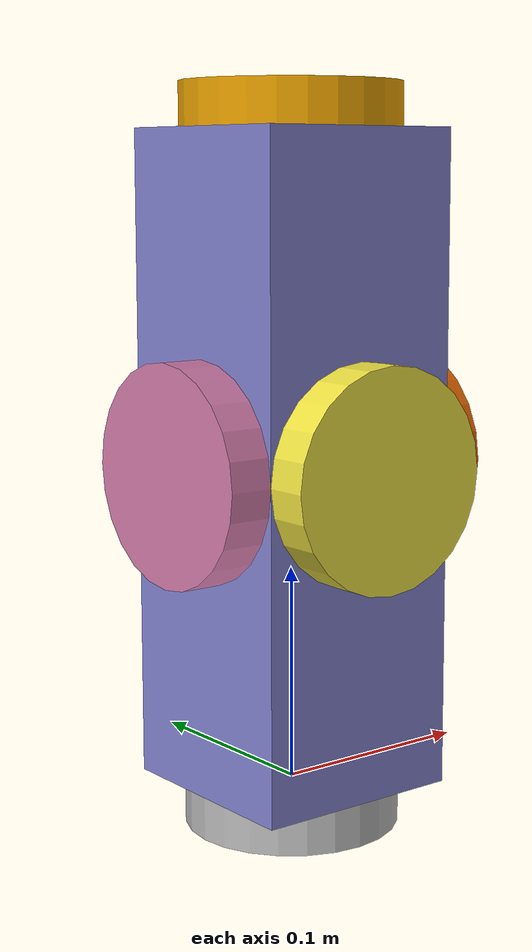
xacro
<?xml version="1.0"?>
<robot xmlns:xacro="http://www.ros.org/wiki/xacro">
    <xacro:include filename="inertial_macros.xacro" />

    <!-- adding the variable -->
    <xacro:property name="wheel_radius" value="0.05" />
    <xacro:property name="wheel_thick" value="0.04" />

    <material name="white">
        <color rgba="1.0 1.0 1.0 1.0" />
    </material>

    <material name="red">
        <color rgba="1.0 0.2 0.2 1.0" />
    </material>
    <material name="black">
        <color rgba="0 0 0 0" />
    </material>
    <material name="light_blue">
        <color rgba="0.5 0.5 0.8 1.0" />
    </material>

    <!-- base link -->
    <link name="base_link"></link>

    <!-- base_footprint link -->
    <joint name="base_footprint_joint" type="fixed">
        <parent link="base_link" />
        <child link="base_footprint" />
        <origin xyz="0.0 0.0 0.0" rpy="0.0 0.0 0.0" />
    </joint>

    <link name="base_footprint"></link>

    <!-- sat_body link -->
    <joint name="sat_body_joint" type="fixed">
        <parent link="base_link" />
        <child link="sat_body" />
        <origin xyz="0.0 0.0 0.15" />
    </joint>

    <link name="sat_body">
        <visual>
            <origin xyz="0.0 0.0 0.0" />

            <geometry>
                <box size="0.1 0.1 0.3 " />
            </geometry>
            <material name="light_blue" />
        </visual>
        <collision>

            <origin xyz="0.0 0.0 0.0" />

            <geometry>
                <box size="0.1 0.1 0.3 " />
            </geometry>

        </collision>
        <xacro:inertial_box mass="0.5" x="0.1" y="0.1" z="0.3">
            <origin xyz="0.0 0.0 0.0" rpy="0 0 0" />
        </xacro:inertial_box>

    </link>
    <gazebo reference='sat_body'>
        <material>Gazebo/Orange </material>
    </gazebo>

    <!-- reaction_wheel_xz link (lettering referes to the plane parallel to them) -->
    <joint name="rec_wheel_xz_joint" type="continuous">
        <parent link="sat_body" />
        <child link="rec_wheel_xz" />
        <origin xyz="0.0 -0.05 0.0" rpy="-${pi/2} 0 0" />
        <axis xyz="0.0 0.0 1.0" />
    </joint>

    <link name="rec_wheel_xz">
        <visual>
            <geometry>
                <cylinder radius="${wheel_radius}" length="0.04" />
                <material name="black" />
            </geometry>
        </visual>
        <collision>

            <geometry>
                <cylinder radius="${wheel_radius}" length="0.04" />
            </geometry>

        </collision>
        <xacro:inertial_cylinder mass="0.1" length="0.04" radius="${wheel_radius}">
            <origin xyz="0.0 0.0 0.0" rpy="0.0 0.0 0.0" />
        </xacro:inertial_cylinder>

    </link>
    <gazebo reference='rec_wheel_xz'>
        <material>Gazebo/Motorway</material>
    </gazebo>
        <!-- reaction_wheel_xz link (lettering referes to the plane parallel to them) -->
    <joint name="rec_wheel_xz_jointbrother" type="continuous">
        <parent link="sat_body" />
        <child link="rec_wheel_xzbrother" />
        <origin xyz="0.0 0.05 0.0" rpy="-${pi/2} 0 0" />
        <axis xyz="0.0 0.0 1.0" />
    </joint>

    <link name="rec_wheel_xzbrother">
        <visual>
            <geometry>
                <cylinder radius="${wheel_radius}" length="0.04" />
                <material name="black" />
            </geometry>
        </visual>
        <collision>

            <geometry>
                <cylinder radius="${wheel_radius}" length="0.04" />
            </geometry>

        </collision>
        <xacro:inertial_cylinder mass="0.1" length="0.04" radius="${wheel_radius}">
            <origin xyz="0.0 0.0 0.0" rpy="0.0 0.0 0.0" />
        </xacro:inertial_cylinder>

    </link>
    <gazebo reference='rec_wheel_xzbrother'>
        <material>Gazebo/Motorway</material>
    </gazebo>

    <!-- reaction wheel in yz plane link -->
    <joint name="rec_wheel_yz_joint" type="continuous">
        <parent link="sat_body" />
        <child link="rec_wheel_yz" />
        <origin xyz="0.05 0.0 0.0" rpy="0 ${pi/2} 0" />
        <axis xyz="0.0 0.0 1.0" />
    </joint>

    <link name="rec_wheel_yz">
        <visual>
            <geometry>
                <cylinder radius="${wheel_radius}" length="0.04" />
                <material name="black" />
            </geometry>
        </visual>
        <collision>

            <geometry>
                <cylinder radius="${wheel_radius}" length="0.04" />
            </geometry>

        </collision>
        <xacro:inertial_cylinder mass="0.1" length="0.04" radius="${wheel_radius}">
            <origin xyz="0.0 0.0 0.0" rpy="0.0 0.0 0.0" />
        </xacro:inertial_cylinder>

    </link>
    <gazebo reference='rec_wheel_yz'>
        <material>Gazebo/Motorway</material>
    </gazebo>

        <!-- reaction wheel in yz plane link -->
    <joint name="rec_wheel_yz_jointbrother" type="continuous">
        <parent link="sat_body" />
        <child link="rec_wheel_yzbrother" />
        <origin xyz="-0.05 0.0 0.0" rpy="0 ${pi/2} 0" />
        <axis xyz="0.0 0.0 1.0" />
    </joint>

    <link name="rec_wheel_yzbrother">
        <visual>
            <geometry>
                <cylinder radius="${wheel_radius}" length="0.04" />
                <material name="black" />
            </geometry>
        </visual>
        <collision>

            <geometry>
                <cylinder radius="${wheel_radius}" length="0.04" />
            </geometry>

        </collision>
        <xacro:inertial_cylinder mass="0.1" length="0.04" radius="${wheel_radius}">
            <origin xyz="0.0 0.0 0.0" rpy="0.0 0.0 0.0" />
        </xacro:inertial_cylinder>

    </link>
    <gazebo reference='rec_wheel_yzbrother'>
        <material>Gazebo/Motorway</material>
    </gazebo>

    <!-- reaction wheel in xy plane link -->
    <joint name="rec_wheel_xy_joint" type="continuous">
        <parent link="sat_body" />
        <child link="rec_wheel_xy" />
        <origin xyz="0.0 0.0 -0.15" rpy="0 ${pi} 0" />
        <axis xyz="0.0 0.0 1.0" />
    </joint>

    <link name="rec_wheel_xy">
        <visual>
            <geometry>
                <cylinder radius="${wheel_radius}" length="0.04" />
                <material name="black" />
            </geometry>
        </visual>
        <collision>

            <geometry>
                <cylinder radius="${wheel_radius}" length="0.04" />
            </geometry>

        </collision>
        <xacro:inertial_cylinder mass="0.1" length="0.04" radius="${wheel_radius}">
            <origin xyz="0.0 0.0 0.0" rpy="0.0 0.0 0.0" />
        </xacro:inertial_cylinder>

    </link>
    <gazebo reference='rec_wheel_xy'>
        <material>Gazebo/Motorway</material>
    </gazebo>

    <!-- reaction wheel in xy plane link  brother -->
    <joint name="rec_wheel_xy_jointbrother" type="continuous">
        <parent link="sat_body" />
        <child link="rec_wheel_xybrother" />
        <origin xyz="0.0 0.0 0.15" rpy="0 ${pi} 0" />
        <axis xyz="0.0 0.0 1.0" />
    </joint>

    <link name="rec_wheel_xybrother">
        <visual>
            <geometry>
                <cylinder radius="${wheel_radius}" length="0.04" />
                <material name="black" />
            </geometry>
        </visual>
        <collision>

            <geometry>
                <cylinder radius="${wheel_radius}" length="0.04" />
            </geometry>

        </collision>
        <xacro:inertial_cylinder mass="0.1" length="0.04" radius="${wheel_radius}">
            <origin xyz="0.0 0.0 0.0" rpy="0.0 0.0 0.0" />
        </xacro:inertial_cylinder>

    </link>
    <gazebo reference='rec_wheel_xybrother'>
        <material>Gazebo/Motorway</material>
    </gazebo>

</robot>
